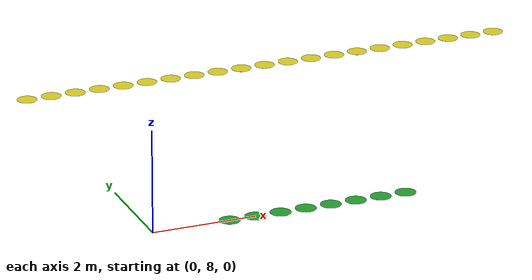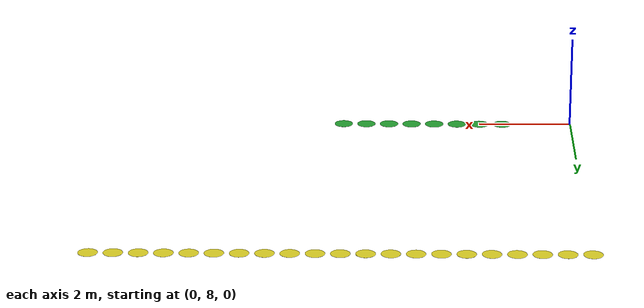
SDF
<?xml version="1.0"?>
<sdf version="1.6">
	<model name="highbay_loop1">
		<static>true</static>
		<link name="inner_loop">

			<visual name="point0">
				<pose>0 15 0.01 0 0 0</pose>
				<geometry>
					<cylinder>
						<radius>0.2</radius>
						<length>0.001</length>
					</cylinder>
				</geometry>
				<material>
					<script>
						<uri>file://media/materials/scripts/gazebo.material</uri>
						<name>Gazebo/Yellow</name>
					</script>
				</material>
			</visual>

			<visual name="point1">
				<pose>0.5 15 0.01 0 0 0</pose>
				<geometry>
					<cylinder>
						<radius>0.2</radius>
						<length>0.001</length>
					</cylinder>
				</geometry>
				<material>
					<script>
						<uri>file://media/materials/scripts/gazebo.material</uri>
						<name>Gazebo/Yellow</name>
					</script>
				</material>
			</visual>

			<visual name="point2">
				<pose>1 15 0.01 0 0 0</pose>
				<geometry>
					<cylinder>
						<radius>0.2</radius>
						<length>0.001</length>
					</cylinder>
				</geometry>
				<material>
					<script>
						<uri>file://media/materials/scripts/gazebo.material</uri>
						<name>Gazebo/Yellow</name>
					</script>
				</material>
			</visual>

			<visual name="point3">
				<pose>1.5 15 0.01 0 0 0</pose>
				<geometry>
					<cylinder>
						<radius>0.2</radius>
						<length>0.001</length>
					</cylinder>
				</geometry>
				<material>
					<script>
						<uri>file://media/materials/scripts/gazebo.material</uri>
						<name>Gazebo/Yellow</name>
					</script>
				</material>
			</visual>

			<visual name="point4">
				<pose>2 15 0.01 0 0 0</pose>
				<geometry>
					<cylinder>
						<radius>0.2</radius>
						<length>0.001</length>
					</cylinder>
				</geometry>
				<material>
					<script>
						<uri>file://media/materials/scripts/gazebo.material</uri>
						<name>Gazebo/Yellow</name>
					</script>
				</material>
			</visual>

			<visual name="point5">
				<pose>2.5 15 0.01 0 0 0</pose>
				<geometry>
					<cylinder>
						<radius>0.2</radius>
						<length>0.001</length>
					</cylinder>
				</geometry>
				<material>
					<script>
						<uri>file://media/materials/scripts/gazebo.material</uri>
						<name>Gazebo/Yellow</name>
					</script>
				</material>
			</visual>

			<visual name="point6">
				<pose>3 15 0.01 0 0 0</pose>
				<geometry>
					<cylinder>
						<radius>0.2</radius>
						<length>0.001</length>
					</cylinder>
				</geometry>
				<material>
					<script>
						<uri>file://media/materials/scripts/gazebo.material</uri>
						<name>Gazebo/Yellow</name>
					</script>
				</material>
			</visual>

			<visual name="point7">
				<pose>3.5 15 0.01 0 0 0</pose>
				<geometry>
					<cylinder>
						<radius>0.2</radius>
						<length>0.001</length>
					</cylinder>
				</geometry>
				<material>
					<script>
						<uri>file://media/materials/scripts/gazebo.material</uri>
						<name>Gazebo/Yellow</name>
					</script>
				</material>
			</visual>

			<visual name="point8">
				<pose>4 15 0.01 0 0 0</pose>
				<geometry>
					<cylinder>
						<radius>0.2</radius>
						<length>0.001</length>
					</cylinder>
				</geometry>
				<material>
					<script>
						<uri>file://media/materials/scripts/gazebo.material</uri>
						<name>Gazebo/Yellow</name>
					</script>
				</material>
			</visual>

			<visual name="point9">
				<pose>4.5 15 0.01 0 0 0</pose>
				<geometry>
					<cylinder>
						<radius>0.2</radius>
						<length>0.001</length>
					</cylinder>
				</geometry>
				<material>
					<script>
						<uri>file://media/materials/scripts/gazebo.material</uri>
						<name>Gazebo/Yellow</name>
					</script>
				</material>
			</visual>

			<visual name="point10">
				<pose>5 15 0.01 0 0 0</pose>
				<geometry>
					<cylinder>
						<radius>0.2</radius>
						<length>0.001</length>
					</cylinder>
				</geometry>
				<material>
					<script>
						<uri>file://media/materials/scripts/gazebo.material</uri>
						<name>Gazebo/Yellow</name>
					</script>
				</material>
			</visual>

			<visual name="point11">
				<pose>5.5 15 0.01 0 0 0</pose>
				<geometry>
					<cylinder>
						<radius>0.2</radius>
						<length>0.001</length>
					</cylinder>
				</geometry>
				<material>
					<script>
						<uri>file://media/materials/scripts/gazebo.material</uri>
						<name>Gazebo/Yellow</name>
					</script>
				</material>
			</visual>

			<visual name="point12">
				<pose>6 15 0.01 0 0 0</pose>
				<geometry>
					<cylinder>
						<radius>0.2</radius>
						<length>0.001</length>
					</cylinder>
				</geometry>
				<material>
					<script>
						<uri>file://media/materials/scripts/gazebo.material</uri>
						<name>Gazebo/Yellow</name>
					</script>
				</material>
			</visual>

			<visual name="point13">
				<pose>6.5 15 0.01 0 0 0</pose>
				<geometry>
					<cylinder>
						<radius>0.2</radius>
						<length>0.001</length>
					</cylinder>
				</geometry>
				<material>
					<script>
						<uri>file://media/materials/scripts/gazebo.material</uri>
						<name>Gazebo/Yellow</name>
					</script>
				</material>
			</visual>

			<visual name="point14">
				<pose>7 15 0.01 0 0 0</pose>
				<geometry>
					<cylinder>
						<radius>0.2</radius>
						<length>0.001</length>
					</cylinder>
				</geometry>
				<material>
					<script>
						<uri>file://media/materials/scripts/gazebo.material</uri>
						<name>Gazebo/Yellow</name>
					</script>
				</material>
			</visual>

			<visual name="point15">
				<pose>7.5 15 0.01 0 0 0</pose>
				<geometry>
					<cylinder>
						<radius>0.2</radius>
						<length>0.001</length>
					</cylinder>
				</geometry>
				<material>
					<script>
						<uri>file://media/materials/scripts/gazebo.material</uri>
						<name>Gazebo/Yellow</name>
					</script>
				</material>
			</visual>

			<visual name="point16">
				<pose>8 15 0.01 0 0 0</pose>
				<geometry>
					<cylinder>
						<radius>0.2</radius>
						<length>0.001</length>
					</cylinder>
				</geometry>
				<material>
					<script>
						<uri>file://media/materials/scripts/gazebo.material</uri>
						<name>Gazebo/Yellow</name>
					</script>
				</material>
			</visual>

			<visual name="point17">
				<pose>8.5 15 0.01 0 0 0</pose>
				<geometry>
					<cylinder>
						<radius>0.2</radius>
						<length>0.001</length>
					</cylinder>
				</geometry>
				<material>
					<script>
						<uri>file://media/materials/scripts/gazebo.material</uri>
						<name>Gazebo/Yellow</name>
					</script>
				</material>
			</visual>

			<visual name="point18">
				<pose>9 15 0.01 0 0 0</pose>
				<geometry>
					<cylinder>
						<radius>0.2</radius>
						<length>0.001</length>
					</cylinder>
				</geometry>
				<material>
					<script>
						<uri>file://media/materials/scripts/gazebo.material</uri>
						<name>Gazebo/Yellow</name>
					</script>
				</material>
			</visual>

			<visual name="point19">
				<pose>9.5 15 0.01 0 0 0</pose>
				<geometry>
					<cylinder>
						<radius>0.2</radius>
						<length>0.001</length>
					</cylinder>
				</geometry>
				<material>
					<script>
						<uri>file://media/materials/scripts/gazebo.material</uri>
						<name>Gazebo/Yellow</name>
					</script>
				</material>
			</visual>

			<visual name="point20">
				<pose>10 15 0.01 0 0 0</pose>
				<geometry>
					<cylinder>
						<radius>0.2</radius>
						<length>0.001</length>
					</cylinder>
				</geometry>
				<material>
					<script>
						<uri>file://media/materials/scripts/gazebo.material</uri>
						<name>Gazebo/Yellow</name>
					</script>
				</material>
			</visual>

			<visual name="entry0">
				<pose>5 8 0.01 0 0 0</pose>
				<geometry>
					<cylinder>
						<radius>0.2</radius>
						<length>0.001</length>
					</cylinder>
				</geometry>
				<material>
					<script>
						<uri>file://media/materials/scripts/gazebo.material</uri>
						<name>Gazebo/Green</name>
					</script>
				</material>
			</visual>

			<visual name="entry1">
				<pose>4.5 8 0.01 0 0 0</pose>
				<geometry>
					<cylinder>
						<radius>0.2</radius>
						<length>0.001</length>
					</cylinder>
				</geometry>
				<material>
					<script>
						<uri>file://media/materials/scripts/gazebo.material</uri>
						<name>Gazebo/Green</name>
					</script>
				</material>
			</visual>

			<visual name="entry2">
				<pose>4 8 0.01 0 0 0</pose>
				<geometry>
					<cylinder>
						<radius>0.2</radius>
						<length>0.001</length>
					</cylinder>
				</geometry>
				<material>
					<script>
						<uri>file://media/materials/scripts/gazebo.material</uri>
						<name>Gazebo/Green</name>
					</script>
				</material>
			</visual>

			<visual name="entry3">
				<pose>3.5 8 0.01 0 0 0</pose>
				<geometry>
					<cylinder>
						<radius>0.2</radius>
						<length>0.001</length>
					</cylinder>
				</geometry>
				<material>
					<script>
						<uri>file://media/materials/scripts/gazebo.material</uri>
						<name>Gazebo/Green</name>
					</script>
				</material>
			</visual>

			<visual name="entry4">
				<pose>3 8 0.01 0 0 0</pose>
				<geometry>
					<cylinder>
						<radius>0.2</radius>
						<length>0.001</length>
					</cylinder>
				</geometry>
				<material>
					<script>
						<uri>file://media/materials/scripts/gazebo.material</uri>
						<name>Gazebo/Green</name>
					</script>
				</material>
			</visual>

			<visual name="entry5">
				<pose>2.5 8 0.01 0 0 0</pose>
				<geometry>
					<cylinder>
						<radius>0.2</radius>
						<length>0.001</length>
					</cylinder>
				</geometry>
				<material>
					<script>
						<uri>file://media/materials/scripts/gazebo.material</uri>
						<name>Gazebo/Green</name>
					</script>
				</material>
			</visual>

			<visual name="entry6">
				<pose>2 8 0.01 0 0 0</pose>
				<geometry>
					<cylinder>
						<radius>0.2</radius>
						<length>0.001</length>
					</cylinder>
				</geometry>
				<material>
					<script>
						<uri>file://media/materials/scripts/gazebo.material</uri>
						<name>Gazebo/Green</name>
					</script>
				</material>
			</visual>

			<visual name="entry7">
				<pose>1.5 8 0.01 0 0 0</pose>
				<geometry>
					<cylinder>
						<radius>0.2</radius>
						<length>0.001</length>
					</cylinder>
				</geometry>
				<material>
					<script>
						<uri>file://media/materials/scripts/gazebo.material</uri>
						<name>Gazebo/Green</name>
					</script>
				</material>
			</visual>

		</link>
	</model>
</sdf>
